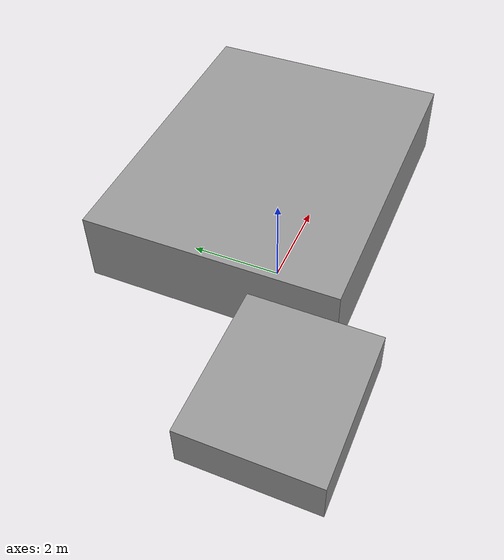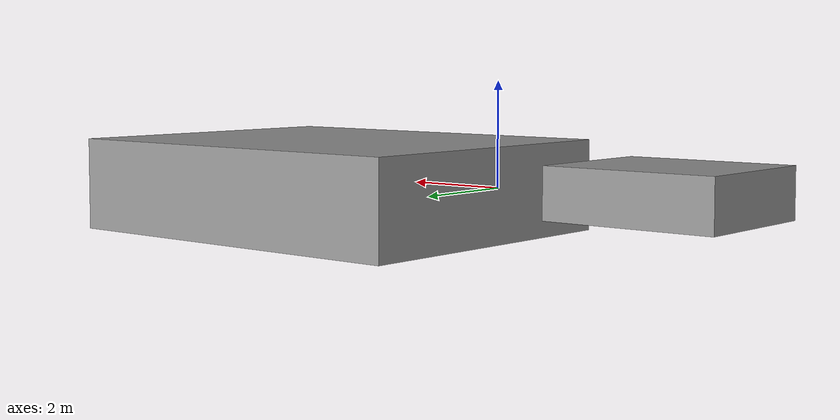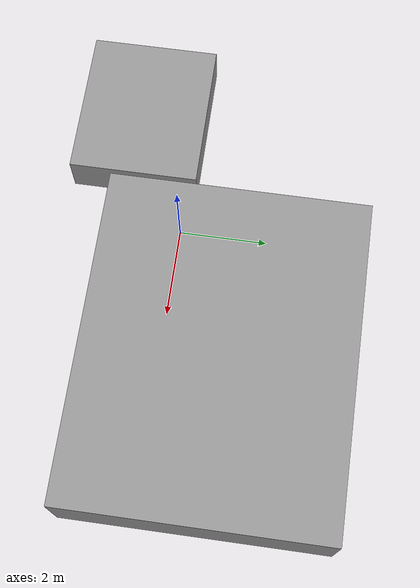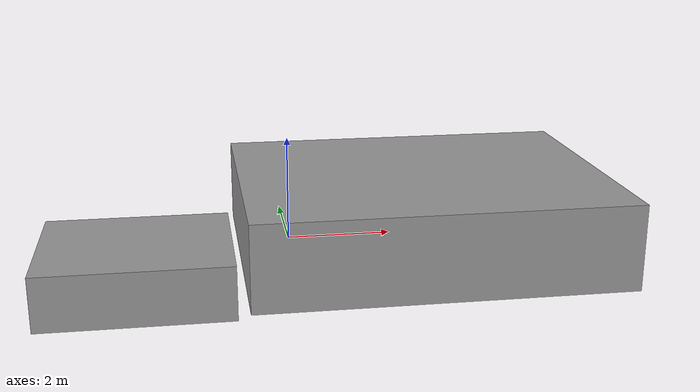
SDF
<?xml version='1.0'?>
<sdf version='1.6'>
  <model name='Hangar'>
    <link name='link_0'>
      <inertial>
        <mass>78.2361</mass>
        <inertia>
          <ixx>252.999</ixx>
          <ixy>0</ixy>
          <ixz>0</ixz>
          <iyy>389.272</iyy>
          <iyz>0</iyz>
          <izz>602.934</izz>
        </inertia>
        <pose frame=''>0 0 0 0 -0 0</pose>
      </inertial>
      <pose frame=''>2.8854 1.27912 0 0 -0 0</pose>
      <gravity>1</gravity>
      <self_collide>0</self_collide>
      <kinematic>0</kinematic>
      <enable_wind>0</enable_wind>
      <visual name='visual'>
        <pose frame=''>0 0 0 0 -0 0</pose>
        <geometry>
          <box>
            <size>7.52931 5.98236 1.73688</size>
          </box>
        </geometry>
        <material>
          <lighting>1</lighting>
          <script>
            <uri>file://media/materials/scripts/gazebo.material</uri>
            <name>Gazebo/Grey</name>
          </script>
          <shader type='vertex'>
            <normal_map>__default__</normal_map>
          </shader>
        </material>
        <transparency>0</transparency>
        <cast_shadows>1</cast_shadows>
      </visual>
      <collision name='collision'>
        <laser_retro>0</laser_retro>
        <max_contacts>10</max_contacts>
        <pose frame=''>0 0 0 0 -0 0</pose>
        <geometry>
          <box>
            <size>7.52931 5.98236 1.73688</size>
          </box>
        </geometry>
        <surface>
          <friction>
            <ode>
              <mu>1</mu>
              <mu2>1</mu2>
              <fdir1>0 0 0</fdir1>
              <slip1>0</slip1>
              <slip2>0</slip2>
            </ode>
            <torsional>
              <coefficient>1</coefficient>
              <patch_radius>0</patch_radius>
              <surface_radius>0</surface_radius>
              <use_patch_radius>1</use_patch_radius>
              <ode>
                <slip>0</slip>
              </ode>
            </torsional>
          </friction>
          <bounce>
            <restitution_coefficient>0</restitution_coefficient>
            <threshold>1e+06</threshold>
          </bounce>
          <contact>
            <collide_without_contact>0</collide_without_contact>
            <collide_without_contact_bitmask>1</collide_without_contact_bitmask>
            <collide_bitmask>1</collide_bitmask>
            <ode>
              <soft_cfm>0</soft_cfm>
              <soft_erp>0.2</soft_erp>
              <kp>1e+13</kp>
              <kd>1</kd>
              <max_vel>0.01</max_vel>
              <min_depth>0</min_depth>
            </ode>
            <bullet>
              <split_impulse>1</split_impulse>
              <split_impulse_penetration_threshold>-0.01</split_impulse_penetration_threshold>
              <soft_cfm>0</soft_cfm>
              <soft_erp>0.2</soft_erp>
              <kp>1e+13</kp>
              <kd>1</kd>
            </bullet>
          </contact>
        </surface>
      </collision>
    </link>
    <link name='link_1'>
      <inertial>
        <mass>10.2613</mass>
        <inertia>
          <ixx>8.41603</ixx>
          <ixy>0</ixy>
          <ixz>0</ixz>
          <iyy>11.0382</iyy>
          <iyz>0</iyz>
          <izz>17.744</izz>
        </inertia>
        <pose frame=''>0 0 0 0 -0 0</pose>
      </inertial>
      <pose frame=''>-2.88545 -1.27911 0 0 -0 0</pose>
      <visual name='visual'>
        <pose frame=''>0 0 0 0 -0 0</pose>
        <geometry>
          <box>
            <size>3.45086 2.97355 1</size>
          </box>
        </geometry>
        <material>
          <lighting>1</lighting>
          <script>
            <uri>file://media/materials/scripts/gazebo.material</uri>
            <name>Gazebo/Grey</name>
          </script>
        </material>
        <transparency>0</transparency>
        <cast_shadows>1</cast_shadows>
      </visual>
      <collision name='collision'>
        <laser_retro>0</laser_retro>
        <max_contacts>10</max_contacts>
        <pose frame=''>0 0 0 0 -0 0</pose>
        <geometry>
          <box>
            <size>3.45086 2.97355 1</size>
          </box>
        </geometry>
        <surface>
          <friction>
            <ode>
              <mu>1</mu>
              <mu2>1</mu2>
              <fdir1>0 0 0</fdir1>
              <slip1>0</slip1>
              <slip2>0</slip2>
            </ode>
            <torsional>
              <coefficient>1</coefficient>
              <patch_radius>0</patch_radius>
              <surface_radius>0</surface_radius>
              <use_patch_radius>1</use_patch_radius>
              <ode>
                <slip>0</slip>
              </ode>
            </torsional>
          </friction>
          <bounce>
            <restitution_coefficient>0</restitution_coefficient>
            <threshold>1e+06</threshold>
          </bounce>
          <contact>
            <collide_without_contact>0</collide_without_contact>
            <collide_without_contact_bitmask>1</collide_without_contact_bitmask>
            <collide_bitmask>1</collide_bitmask>
            <ode>
              <soft_cfm>0</soft_cfm>
              <soft_erp>0.2</soft_erp>
              <kp>1e+13</kp>
              <kd>1</kd>
              <max_vel>0.01</max_vel>
              <min_depth>0</min_depth>
            </ode>
            <bullet>
              <split_impulse>1</split_impulse>
              <split_impulse_penetration_threshold>-0.01</split_impulse_penetration_threshold>
              <soft_cfm>0</soft_cfm>
              <soft_erp>0.2</soft_erp>
              <kp>1e+13</kp>
              <kd>1</kd>
            </bullet>
          </contact>
        </surface>
      </collision>
    </link>
    <static>0</static>
    <allow_auto_disable>1</allow_auto_disable>
  </model>
</sdf>
